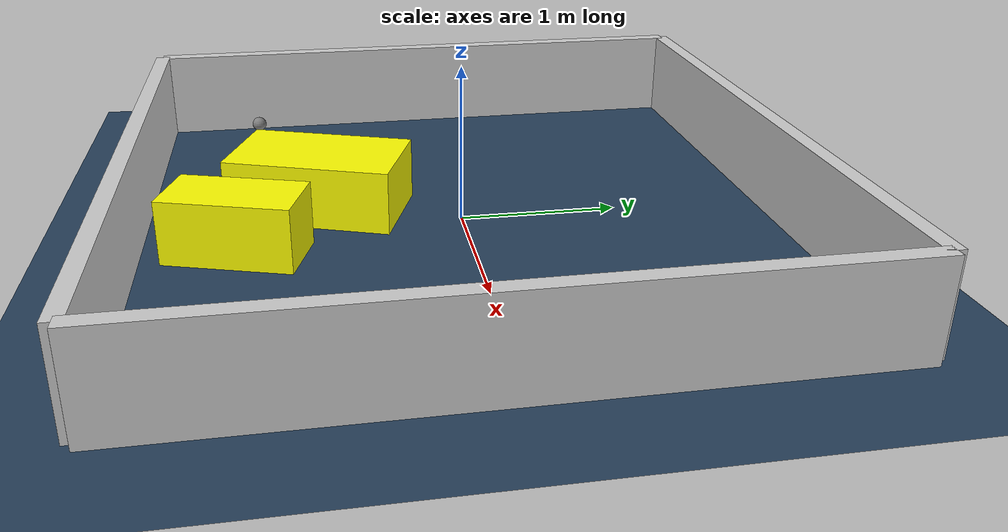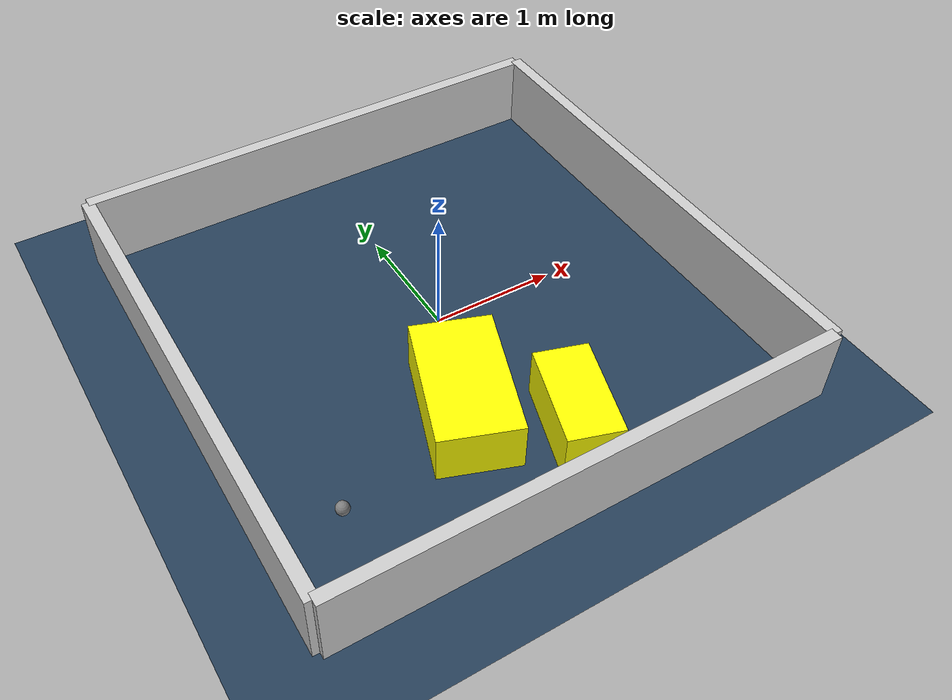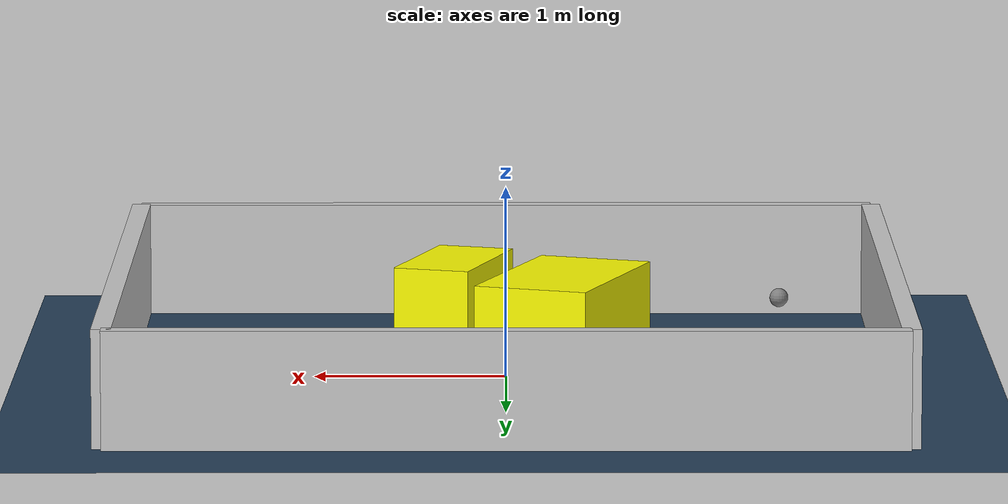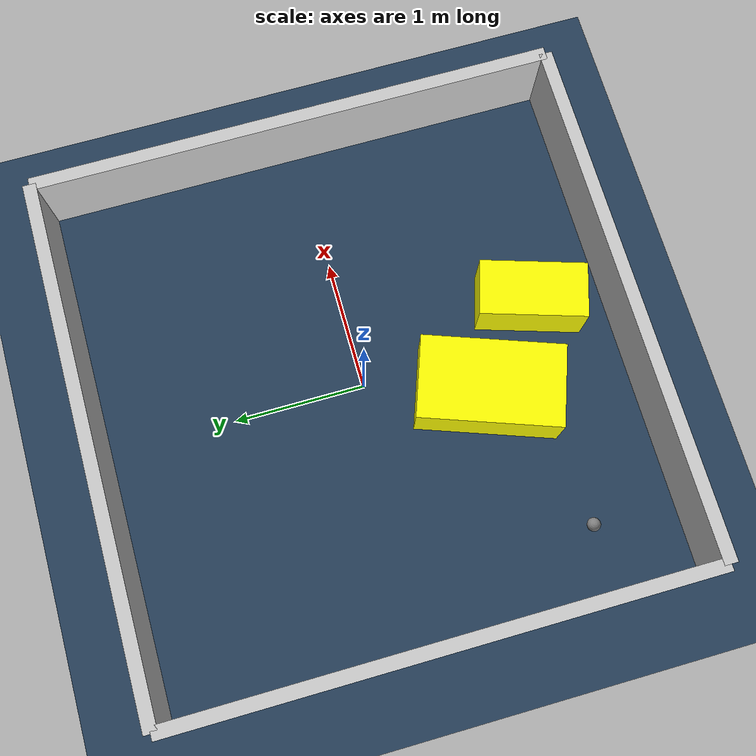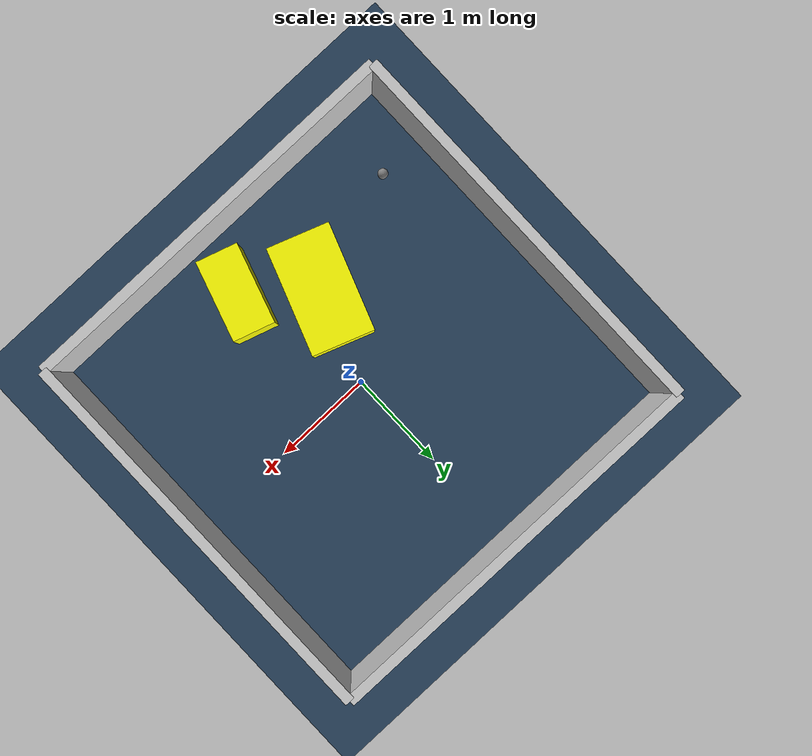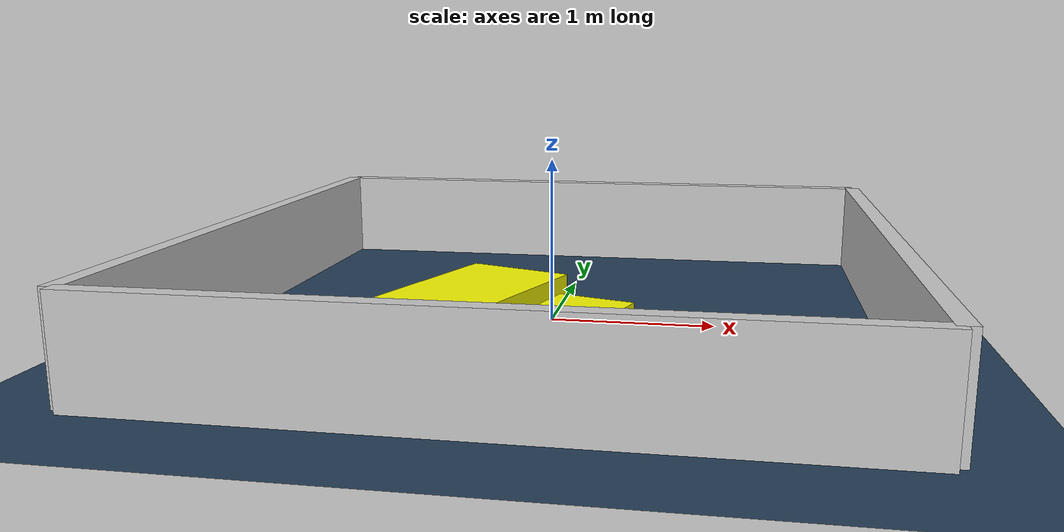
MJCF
<?xml version="1.0" ?>
<mujoco model="generated_environment">
  <option timestep="0.01" integrator="RK4" cone="elliptic"/>
  <default>
    <geom density="1"/>
  </default>
  <asset>
    <texture builtin="gradient" height="3072" rgb1="0.3 0.5 0.7" rgb2="0 0 0" type="skybox" width="512"/>
    <texture builtin="checker" height="300" mark="edge" markrgb="0.8 0.8 0.8" name="groundplane" rgb1="0.2 0.3 0.4" rgb2="0.1 0.2 0.3" type="2d" width="300"/>
    <material name="groundplane" reflectance="0.2" texrepeat="5 5" texture="groundplane" texuniform="true"/>
    <material name="robot" rgba="0.0 1.0 0.0 1"/>
  </asset>
  <worldbody>
    <light dir="0 0 -1" directional="true" pos="0 0 1.5"/>
    <geom condim="4" friction="1.0 0.005 0.001" material="groundplane" name="floor" size="0 0 0.05" type="plane"/>
    <body name="walls">
      <geom name="wall_1" condim="4" pos="-2.0 0.0 0.3" rgba="0.800000011920929 0.800000011920929 0.800000011920929 1.0" size="0.05 2.0 0.3" type="box"/>
      <geom name="wall_2" condim="4" pos="2.0 0.0 0.3" rgba="0.800000011920929 0.800000011920929 0.800000011920929 1.0" size="0.05 2.0 0.3" type="box"/>
      <geom name="wall_3" condim="4" pos="0.0 -2.0 0.3" rgba="0.800000011920929 0.800000011920929 0.800000011920929 1.0" size="2.0 0.05 0.3" type="box"/>
      <geom name="wall_4" condim="4" pos="0.0 2.0 0.3" rgba="0.800000011920929 0.800000011920929 0.800000011920929 1.0" size="2.0 0.05 0.3" type="box"/>
    </body>
    <body name="robot">
      <joint name="joint_x" type="slide" pos="0 0 0" axis="1 0 0"/>
      <joint name="joint_y" type="slide" pos="0 0 0" axis="0 1 0"/>
      <geom name="robot" type="sphere" pos="-1.4729744799154045 -1.2886468428932987 0.2" size="0.05" mass="5." friction="1.0 0.005 0.0001" condim="4"/>
      <site name="sensor_ball"/>
    </body>
    <body name="obstacle_1_movable">
      <geom name="obstacle_1_movable" condim="4" pos="0.2831558638180014 -1.3825255500045477 0.2" euler="0 0 72.56511099004308" friction="1.0 0.005 0.001" rgba="1 1 0 1" size="0.4007539740935391 0.20868490036520268 0.2" type="box" mass="0.1"/>
      <joint type="free"/>
    </body>
    <body name="obstacle_2_movable">
      <geom name="obstacle_2_movable" condim="4" pos="-0.3045697905338576 -0.8741442346022252 0.2" euler="0 0 70.27462616199293" friction="1.0 0.005 0.001" rgba="1 1 0 1" size="0.533980497454974 0.31008857840317794 0.2" type="box" mass="0.1"/>
      <joint type="free"/>
    </body>
  </worldbody>
  <actuator>
    <motor name="actuator_x" joint="joint_x" gear="1" ctrlrange="-1 1"/>
    <motor name="actuator_y" joint="joint_y" gear="1" ctrlrange="-1 1"/>
  </actuator>
</mujoco>
